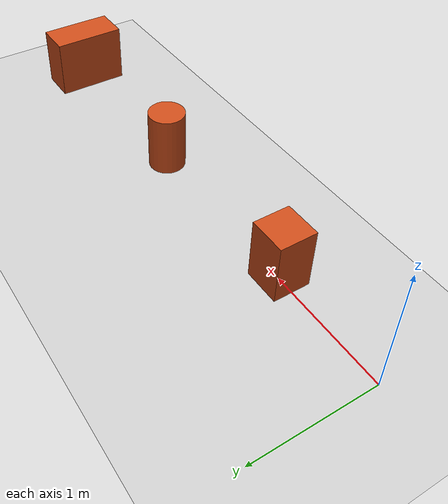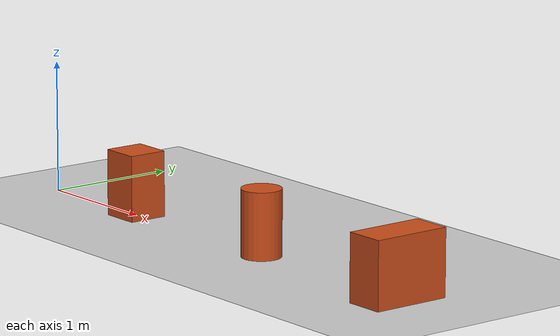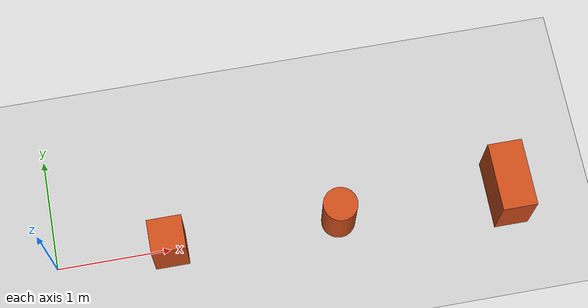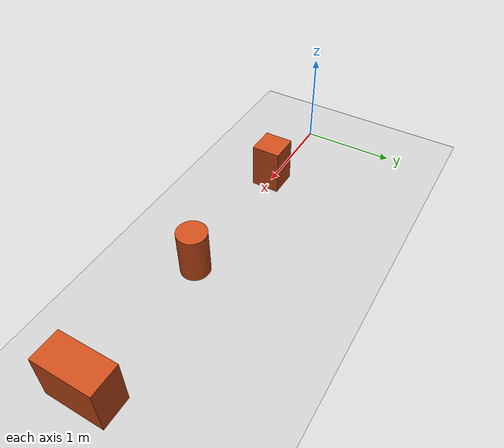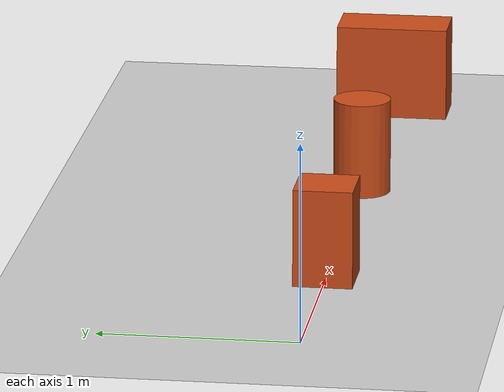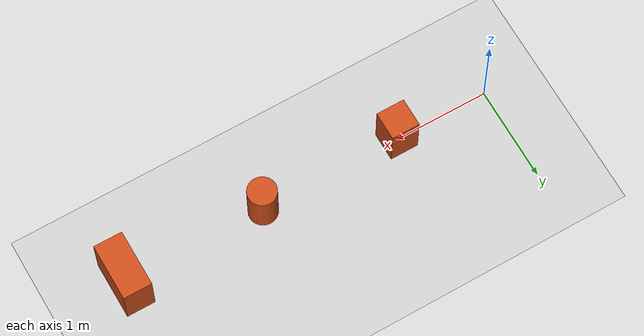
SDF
<?xml version="1.0"?>
<sdf version="1.6">
  <world name="default">
  <plugin
    filename="gz-sim-physics-system"
    name="gz::sim::systems::Physics">
  </plugin>
  <plugin
    filename="gz-sim-user-commands-system"
    name="gz::sim::systems::UserCommands">
  </plugin>
  <plugin
    filename="gz-sim-scene-broadcaster-system"
    name="gz::sim::systems::SceneBroadcaster">
  </plugin>
  <plugin
    filename="gz-sim-sensors-system"
    name="gz::sim::systems::Sensors">
    <render_engine>ogre2</render_engine>
  </plugin>
  <plugin
    filename="gz-sim-imu-system"
    name="gz::sim::systems::Imu">
  </plugin>
    <include>
      <uri>https://fuel.gazebosim.org/1.0/OpenRobotics/models/Ground Plane</uri>
    </include>

    <include>
      <uri>https://fuel.gazebosim.org/1.0/OpenRobotics/models/Sun</uri>
    </include>

    <model name="box_1">
      <static>true</static>
      <pose>1.0 0 0.25 0 0 0</pose>
      <link name="link">
        <collision name="collision">
          <geometry><box><size>0.3 0.3 0.5</size></box></geometry>
        </collision>
        <visual name="visual">
          <geometry><box><size>0.3 0.3 0.5</size></box></geometry>
          <material>
            <ambient>0.8 0.3 0.1 1</ambient>
            <diffuse>0.8 0.3 0.1 1</diffuse>
          </material>
        </visual>
      </link>
    </model>

    <model name="cylinder">
      <static>true</static>
      <pose>2.5 0 0.25 0 0 0</pose>
      <link name="link">
        <collision name="collision">
          <geometry><cylinder><radius>0.15</radius><length>0.5</length></cylinder></geometry>
        </collision>
        <visual name="visual">
          <geometry><cylinder><radius>0.15</radius><length>0.5</length></cylinder></geometry>
          <material>
            <ambient>0.8 0.3 0.1 1</ambient>
            <diffuse>0.8 0.3 0.1 1</diffuse>
          </material>
        </visual>
      </link>
    </model>

    <model name="box_2">
      <static>true</static>
      <pose>4.0 0 0.25 0 0 0</pose>
      <link name="link">
        <collision name="collision">
          <geometry><box><size>0.3 0.6 0.5</size></box></geometry>
        </collision>
        <visual name="visual">
          <geometry><box><size>0.3 0.6 0.5</size></box></geometry>
          <material>
            <ambient>0.8 0.3 0.1 1</ambient>
            <diffuse>0.8 0.3 0.1 1</diffuse>
          </material>
        </visual>
      </link>
    </model>

    <scene>
      <shadows>false</shadows>
    </scene>

    <gui fullscreen='0'>
      <camera name='user_camera'>
        <pose frame=''>0.319654 -0.235002 9.29441 0 1.5138 0.009599</pose>
        <view_controller>orbit</view_controller>
        <projection_type>perspective</projection_type>
      </camera>
    </gui>

    <physics type="ode">
      <real_time_update_rate>1000.0</real_time_update_rate>
      <max_step_size>0.001</max_step_size>
      <real_time_factor>1</real_time_factor>
      <ode>
        <solver>
          <type>quick</type>
          <iters>150</iters>
          <precon_iters>0</precon_iters>
          <sor>1.400000</sor>
          <use_dynamic_moi_rescaling>1</use_dynamic_moi_rescaling>
        </solver>
        <constraints>
          <cfm>0.00001</cfm>
          <erp>0.2</erp>
          <contact_max_correcting_vel>2000.000000</contact_max_correcting_vel>
          <contact_surface_layer>0.01000</contact_surface_layer>
        </constraints>
      </ode>
    </physics>

  </world>
</sdf>
